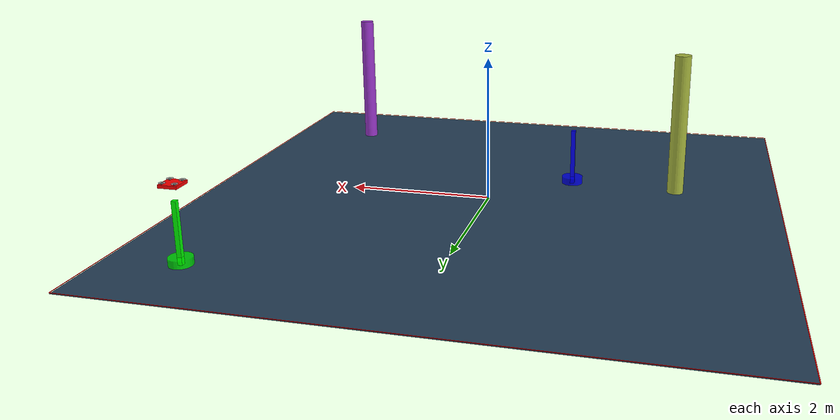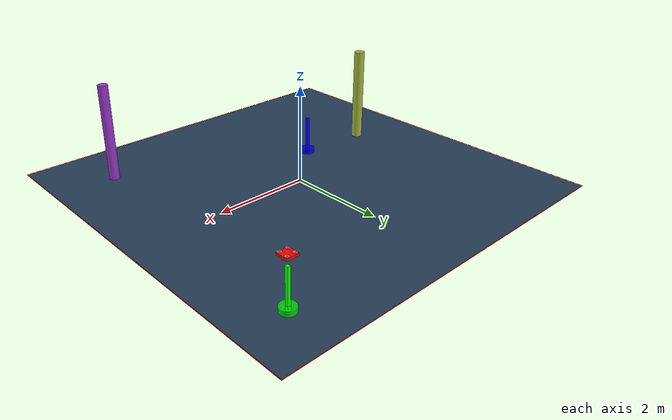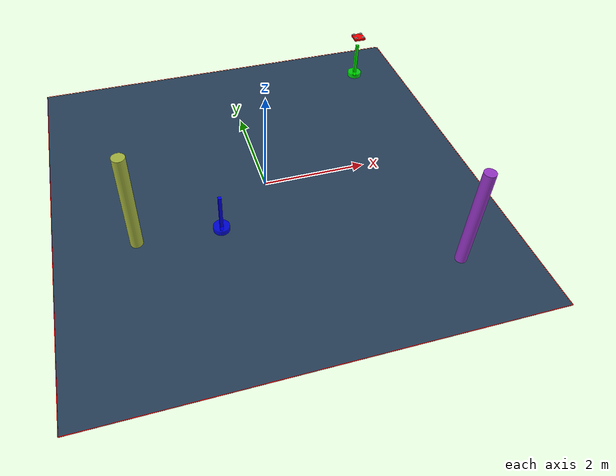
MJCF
<?xml version='1.0' encoding='utf-8'?>
<mujoco model="complex_uav_env">
  <compiler angle="degree" coordinate="local" inertiafromgeom="true" />
  <option integrator="RK4" timestep="0.01" />

  <visual>
    <headlight diffuse="0.6 0.6 0.6" ambient="0.3 0.3 0.3" />
    <rgba haze="0.15 0.25 0.35 1" />
    <global offwidth="2560" offheight="1440" />
  </visual>

  <asset>
    <texture type="skybox" builtin="gradient" rgb1="0.3 0.5 0.7" rgb2="0 0 0" width="512" height="3072" />
    <texture name="grid" type="2d" builtin="checker" rgb1="0.1 0.2 0.3" rgb2="0.2 0.3 0.4" width="512" height="512" />
    <material name="grid" texture="grid" texrepeat="1 1" />
  </asset>

  <worldbody>

    <geom name="ground" type="plane" size="4.0 4.0 0.1" material="grid" />
    <light name="light1" pos="0 0 4" dir="0 0 -1" diffuse="1 1 1" />

    <geom name="start_marker" type="cylinder" size="0.15 0.05" pos="3.0 3.0 0.05" rgba="0 1 0 0.8" />
    <geom name="start_pole" type="box" size="0.03 0.03 0.4" pos="3.0 3.0 0.4" rgba="0 1 0 1" />

    <geom name="goal_marker" type="cylinder" size="0.15 0.05" pos="-1.0654284601421216 -0.9330434546919939 0.05" rgba="0 0 1 0.8" />
    <geom name="goal_pole" type="box" size="0.03 0.03 0.4" pos="-1.0654284601421216 -0.9330434546919939 0.4" rgba="0 0 1 1" />

    <body name="chassis" pos="3.0 3.0 1.0">
      <joint type="free" name="root" />
      <geom type="box" size="0.12 0.12 0.02" rgba="1.0 0.0 0.0 1.0" mass="0.8" />

      <geom type="box" size="0.08 0.01 0.005" pos="0 0 0.01" rgba="0.3 0.3 0.3 1" />
      <geom type="box" size="0.01 0.08 0.005" pos="0 0 0.01" rgba="0.3 0.3 0.3 1" />

      <geom type="cylinder" size="0.015 0.02" pos="0.08 0.08 0.015" rgba="0.2 0.2 0.2 1" />
      <geom type="cylinder" size="0.015 0.02" pos="-0.08 0.08 0.015" rgba="0.2 0.2 0.2 1" />
      <geom type="cylinder" size="0.015 0.02" pos="0.08 -0.08 0.015" rgba="0.2 0.2 0.2 1" />
      <geom type="cylinder" size="0.015 0.02" pos="-0.08 -0.08 0.015" rgba="0.2 0.2 0.2 1" />

      <geom type="cylinder" size="0.04 0.002" pos="0.08 0.08 0.035" rgba="0.7 0.7 0.7 0.8" />
      <geom type="cylinder" size="0.04 0.002" pos="-0.08 0.08 0.035" rgba="0.7 0.7 0.7 0.8" />
      <geom type="cylinder" size="0.04 0.002" pos="0.08 -0.08 0.035" rgba="0.7 0.7 0.7 0.8" />
      <geom type="cylinder" size="0.04 0.002" pos="-0.08 -0.08 0.035" rgba="0.7 0.7 0.7 0.8" />

      <site name="motor1" pos="0.08 0.08 0" size="0.01" />
      <site name="motor2" pos="-0.08 0.08 0" size="0.01" />
      <site name="motor3" pos="0.08 -0.08 0" size="0.01" />
      <site name="motor4" pos="-0.08 -0.08 0" size="0.01" />
    </body>
    <geom name="test_obs_0" type="cylinder" size="0.1027461845572259 1.0" pos="2.7286586287649572 -2.6649779352214673 1.0" rgba="0.6013755100145621 0.21252672894203375 0.7919726059113955 1.0" />
    <geom name="test_obs_1" type="cylinder" size="0.11334509406959023 1.0" pos="-2.5656825990770344 -0.8533740634377932 1.0" rgba="0.6497908363635613 0.7075125995507783 0.2427209145083431 1.0" />
  <geom name="boundary_north" type="box" size="4.0 0.005 0.002" pos="0 4.0 0.002" rgba="1.0 0.0 0.0 1.0" /><geom name="boundary_south" type="box" size="4.0 0.005 0.002" pos="0 -4.0 0.002" rgba="1.0 0.0 0.0 1.0" /><geom name="boundary_east" type="box" size="0.005 4.0 0.002" pos="4.0 0 0.002" rgba="1.0 0.0 0.0 1.0" /><geom name="boundary_west" type="box" size="0.005 4.0 0.002" pos="-4.0 0 0.002" rgba="1.0 0.0 0.0 1.0" /></worldbody>

  <actuator>
    <motor name="m1" gear="0 0 1 0 0 0" site="motor1" />
    <motor name="m2" gear="0 0 1 0 0 0" site="motor2" />
    <motor name="m3" gear="0 0 1 0 0 0" site="motor3" />
    <motor name="m4" gear="0 0 1 0 0 0" site="motor4" />
  </actuator>
</mujoco>
